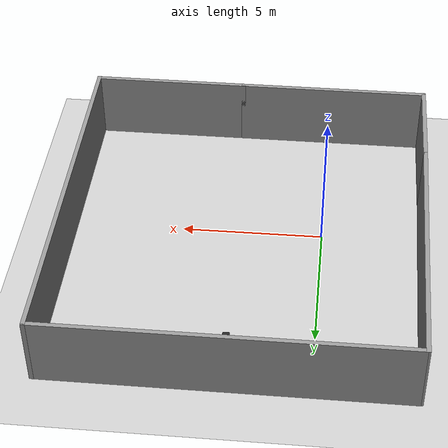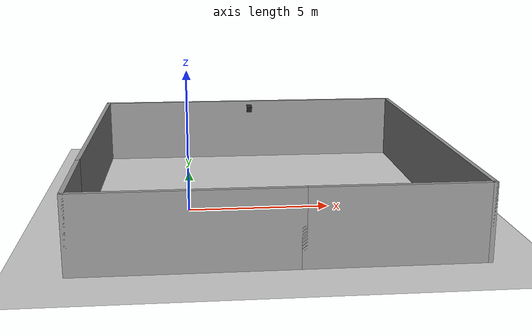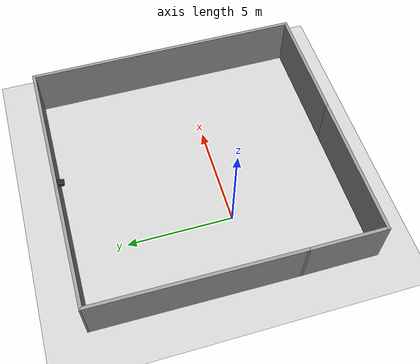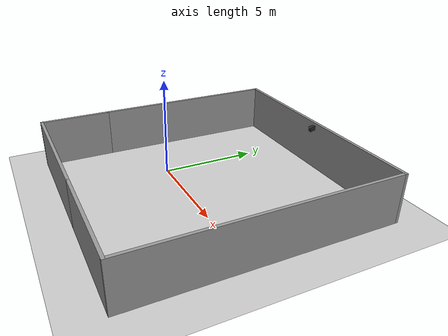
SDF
<sdf version="1.7">
 <world name="default">
  <plugin name="gazebo_ros_state" filename="libgazebo_ros_state.so">
   <ros><namespace>/</namespace></ros>
   <update_rate>50.0</update_rate>
  </plugin>
  <light name="sun" type="directional">
   <pose>0 0 10 0 -0 0</pose>
   <diffuse>0.8 0.8 0.8 1</diffuse>
   <specular>0.2 0.2 0.2 1</specular>
   <attenuation>
    <range>1000</range>
    <constant>0.9</constant>
    <linear>0.01</linear>
    <quadratic>0.001</quadratic>
   </attenuation>
   <direction>-0.5 0.1 -0.9</direction>
   <spot><inner_angle>0</inner_angle><outer_angle>0</outer_angle><falloff>0</falloff></spot>
  </light>
  <model name="ground_plane">
   <static>1</static>
   <link name="link">
    <collision name="collision">
     <geometry><plane><normal>0 0 1</normal><size>100 100</size></plane></geometry>
     <surface><friction><ode><mu>100</mu><mu2>50</mu2></ode></friction></surface>
    </collision>
    <visual name="visual">
     <cast_shadows>0</cast_shadows>
     <geometry><plane><normal>0 0 1</normal><size>100 100</size></plane></geometry>
     <material>
      <script><uri>file://media/materials/scripts/gazebo.material</uri><name>Gazebo/Grey</name></script>
     </material>
    </visual>
   </link>
  </model>
  <gravity>0 0 -9.8</gravity>
  <magnetic_field>6e-06 2.3e-05 -4.2e-05</magnetic_field>
  <atmosphere type="adiabatic"/>
  <physics type="ode">
   <max_step_size>0.001</max_step_size>
   <real_time_factor>1</real_time_factor>
   <real_time_update_rate>1000</real_time_update_rate>
  </physics>
  <scene><ambient>0.4 0.4 0.4 1</ambient><background>0.7 0.7 0.7 1</background><shadows>1</shadows></scene>
  <audio><device>default</device></audio>
  <spherical_coordinates>
   <surface_model>EARTH_WGS84</surface_model>
   <latitude_deg>0</latitude_deg>
   <longitude_deg>0</longitude_deg>
   <elevation>0</elevation>
   <heading_deg>0</heading_deg>
  </spherical_coordinates>
  <model name="Tuong">
   <pose>2.69461 0.900392 0 0 -0 0</pose>
   <link name="Wall_0">
    <collision name="Wall_0_Collision">
     <geometry><box><size>3.75 0.15 2.5</size></box></geometry>
     <pose>0 0 1.25 0 -0 0</pose>
    </collision>
    <visual name="Wall_0_Visual">
     <pose>0 0 1.25 0 -0 0</pose>
     <geometry><box><size>3.75 0.15 2.5</size></box></geometry>
     <material>
      <script><uri>file://media/materials/scripts/gazebo.material</uri><name>Gazebo/Grey</name></script>
      <ambient>1 1 1 1</ambient>
     </material>
     <meta><layer>0</layer></meta>
    </visual>
    <pose>-6.22461 -4.75039 0 0 -0 -1.5708</pose>
   </link>
   <link name="Wall_1">
    <collision name="Wall_1_Collision">
     <geometry><box><size>7 0.15 2.5</size></box></geometry>
     <pose>0 0 1.25 0 -0 0</pose>
    </collision>
    <visual name="Wall_1_Visual">
     <pose>0 0 1.25 0 -0 0</pose>
     <geometry><box><size>7 0.15 2.5</size></box></geometry>
     <material>
      <script><uri>file://media/materials/scripts/gazebo.material</uri><name>Gazebo/Grey</name></script>
      <ambient>1 1 1 1</ambient>
     </material>
     <meta><layer>0</layer></meta>
    </visual>
    <pose>-2.79961 -6.55039 0 0 -0 0</pose>
   </link>
   <link name="Wall_2">
    <collision name="Wall_2_Collision">
     <geometry><box><size>5.75 0.15 2.5</size></box></geometry>
     <pose>0 0 1.25 0 -0 0</pose>
    </collision>
    <visual name="Wall_2_Visual">
     <pose>0 0 1.25 0 -0 0</pose>
     <geometry><box><size>5.75 0.15 2.5</size></box></geometry>
     <material>
      <script><uri>file://media/materials/scripts/gazebo.material</uri><name>Gazebo/Grey</name></script>
      <ambient>1 1 1 1</ambient>
     </material>
     <meta><layer>0</layer></meta>
    </visual>
    <pose>3.42539 -6.55039 0 0 -0 0</pose>
   </link>
   <link name="Wall_3">
    <collision name="Wall_3_Collision">
     <geometry><box><size>13.25 0.15 2.5</size></box></geometry>
     <pose>0 0 1.25 0 -0 0</pose>
    </collision>
    <visual name="Wall_3_Visual">
     <pose>0 0 1.25 0 -0 0</pose>
     <geometry><box><size>13.25 0.15 2.5</size></box></geometry>
     <material>
      <script><uri>file://media/materials/scripts/gazebo.material</uri><name>Gazebo/Grey</name></script>
      <ambient>1 1 1 1</ambient>
     </material>
     <meta><layer>0</layer></meta>
    </visual>
    <pose>6.22539 -0.000392 0 0 -0 1.5708</pose>
   </link>
   <link name="Wall_4">
    <collision name="Wall_4_Collision">
     <geometry><box><size>12.5 0.15 2.5</size></box></geometry>
     <pose>0 0 1.25 0 -0 0</pose>
    </collision>
    <visual name="Wall_4_Visual">
     <pose>0 0 1.25 0 -0 0</pose>
     <geometry><box><size>12.5 0.15 2.5</size></box></geometry>
     <material>
      <script><uri>file://media/materials/scripts/gazebo.material</uri><name>Gazebo/Grey</name></script>
      <ambient>1 1 1 1</ambient>
     </material>
     <meta><layer>0</layer></meta>
    </visual>
    <pose>0.050392 6.54961 0 0 -0 3.14159</pose>
   </link>
   <link name="Wall_5">
    <collision name="Wall_5_Collision">
     <geometry><box><size>9.65053 0.15 2.5</size></box></geometry>
     <pose>0 0 1.25 0 -0 0</pose>
    </collision>
    <visual name="Wall_5_Visual">
     <pose>0 0 1.25 0 -0 0</pose>
     <geometry><box><size>9.65053 0.15 2.5</size></box></geometry>
     <material>
      <script><uri>file://media/materials/scripts/gazebo.material</uri><name>Gazebo/Grey</name></script>
      <ambient>1 1 1 1</ambient>
     </material>
     <meta><layer>0</layer></meta>
    </visual>
    <pose>-6.17461 1.79961 0 0 -0 -1.58132</pose>
   </link>
   <static>1</static>
  </model>
  <model name="overhead_rgbd_camera">
   <static>true</static>
   <pose>2.7 7.25 2.2 0 0.1831108173 -1.57079632679</pose>
   <link name="overhead_camera_link">
    <visual name="camera_body_visual">
     <geometry><box><size>0.35 0.22 0.22</size></box></geometry>
     <material><ambient>0.08 0.08 0.08 1</ambient><diffuse>0.15 0.15 0.15 1</diffuse></material>
    </visual>
    <sensor name="overhead_depth_camera" type="depth">
     <always_on>true</always_on>
     <update_rate>15</update_rate>
     <visualize>true</visualize>
     <camera name="overhead_camera">
      <horizontal_fov>1.57079632679</horizontal_fov>
      <image><width>1280</width><height>720</height><format>R8G8B8</format></image>
      <clip><near>0.2</near><far>20.0</far></clip>
     </camera>
     <plugin name="overhead_camera_controller" filename="libgazebo_ros_camera.so">
      <ros>
       <namespace>/</namespace>
       <remapping>/overhead_camera/camera_info:=/overhead_camera/color/camera_info</remapping>
       <remapping>/overhead_camera/image_raw:=/overhead_camera/color/image_raw</remapping>
       <remapping>/overhead_camera/depth/image_raw:=/overhead_camera/depth/image_raw</remapping>
       <remapping>/overhead_camera/points:=/overhead_camera/depth/points</remapping>
      </ros>
      <camera_name>overhead_camera</camera_name>
      <frame_name>overhead_camera_optical_frame</frame_name>
      <min_depth>0.2</min_depth>
      <max_depth>20.0</max_depth>
     </plugin>
    </sensor>
   </link>
  </model>
 </world>
</sdf>
